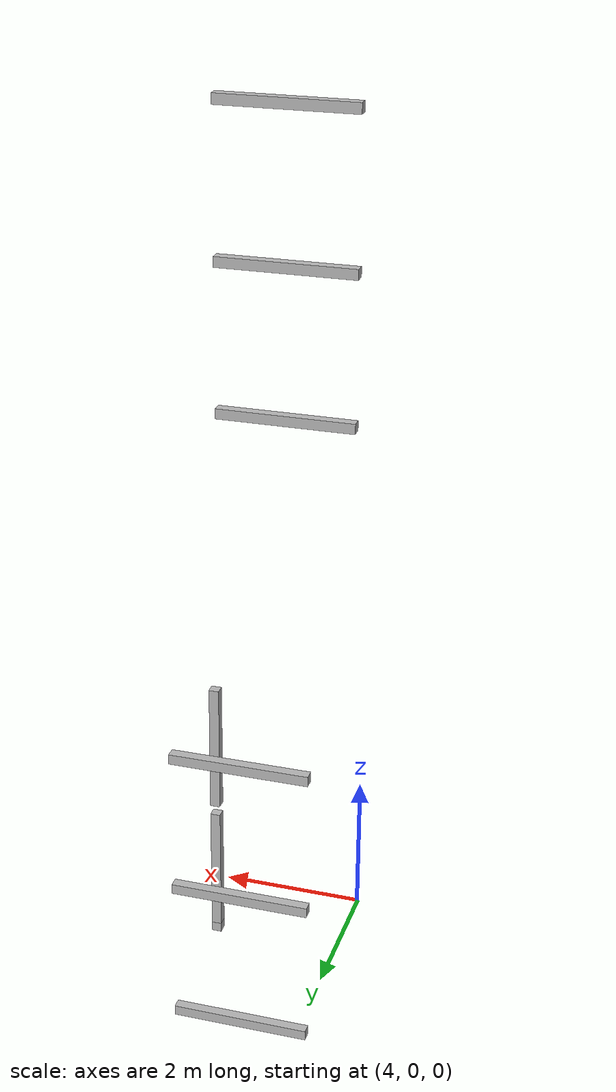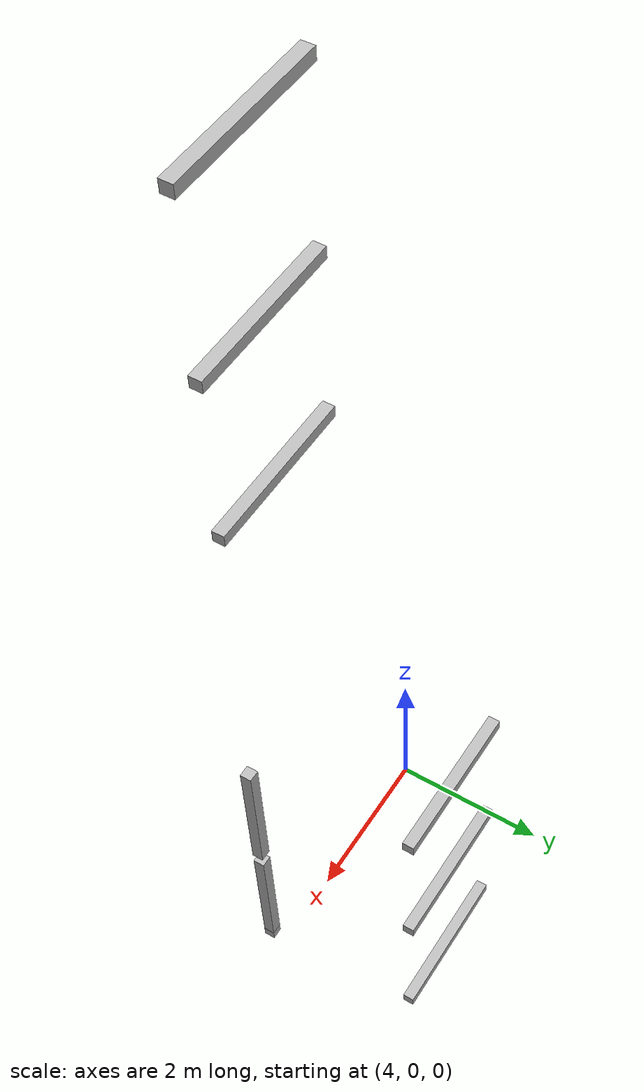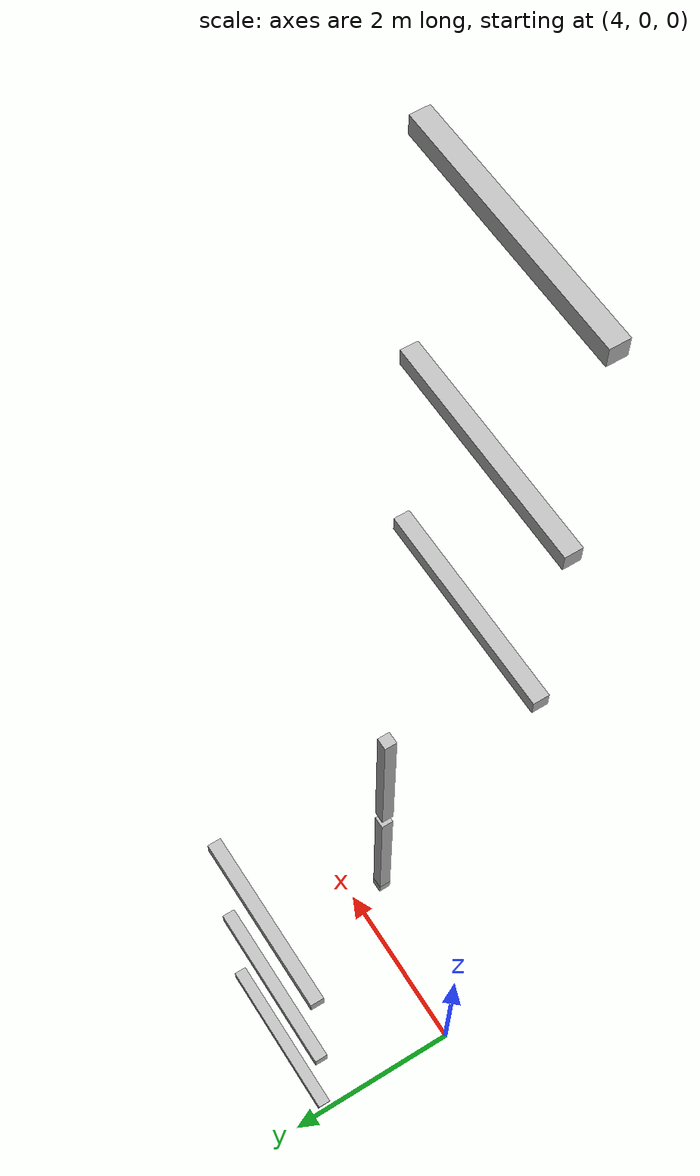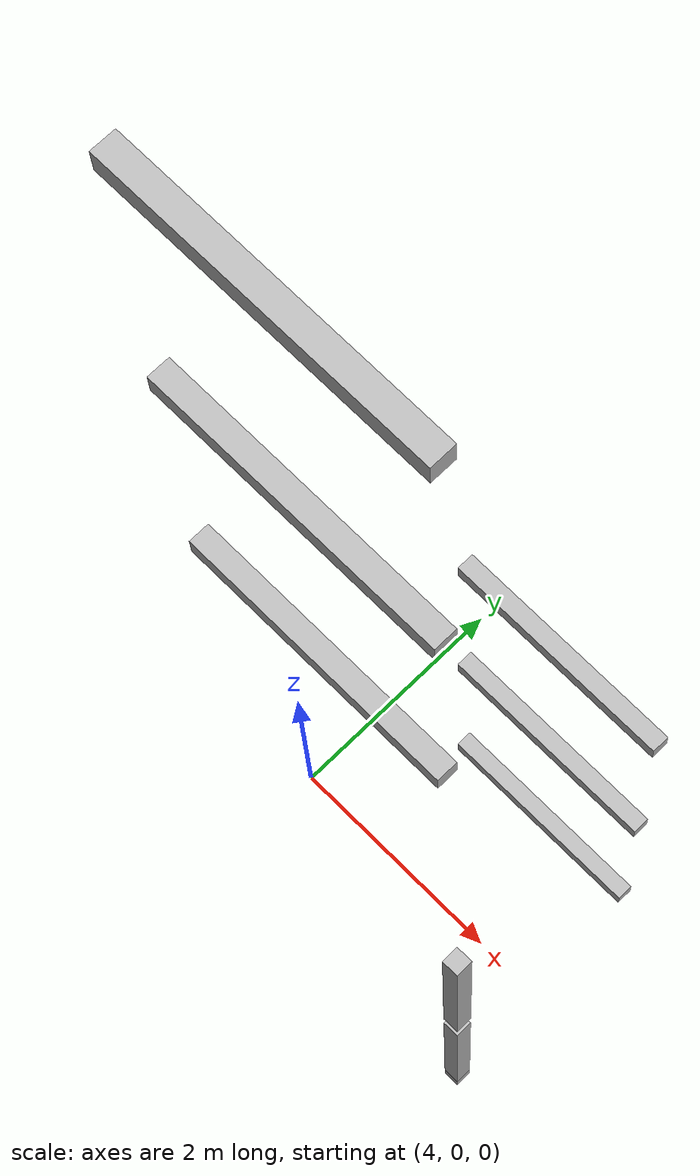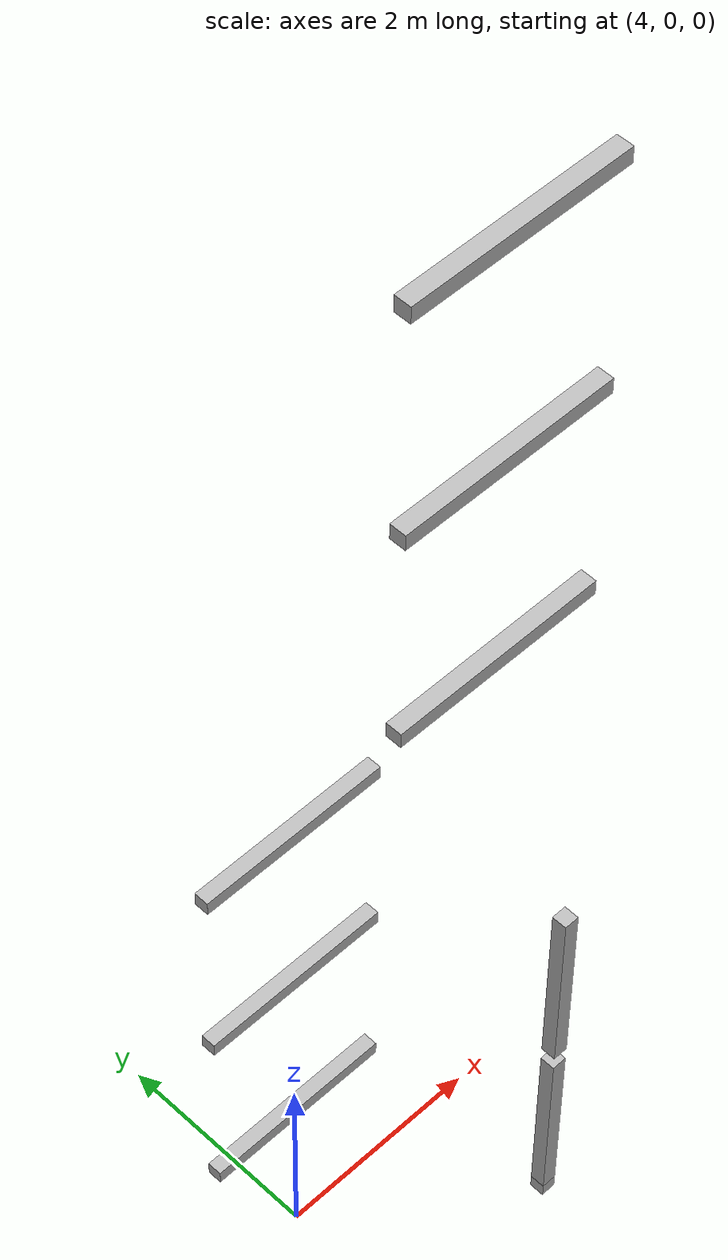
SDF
<sdf version="1.7">
 <world name="default">
  <model name="orthogonal_747_2.000.15_TS">
   <static>1</static>
   <link name="u_link_0_2_6">
    <inertial>
     <mass>1</mass>
     <inertia>
      <ixx>0.166667</ixx>
      <ixy>0</ixy>
      <ixz>0</ixz>
      <iyy>0.166667</iyy>
      <iyz>0</iyz>
      <izz>0.166667</izz>
     </inertia>
    </inertial>
    <pose>12.9 4.3 1.075 0 -0 0</pose>
    <visual name="visual_0">
     <laser_retro>463</laser_retro>
     <geometry><box><size>0.15 1e-06 0.15</size></box></geometry>
     <material>
      <script><name>Gazebo/Grey</name><uri>file://media/materials/scripts/gazebo.material</uri></script>
      <shader type="pixel"><normal_map>__default__</normal_map></shader>
      <ambient>0.678 0.498 0.659 1</ambient>
      <diffuse>0.7 0.7 0.7 1</diffuse>
      <specular>0.01 0.01 0.01 1</specular>
      <emissive>0 0 0 1</emissive>
     </material>
     <pose>0 -0.075 0 0 -0 0</pose>
     <transparency>1</transparency>
    </visual>
    <visual name="visual_1">
     <laser_retro>464</laser_retro>
     <geometry><box><size>0.15 1e-06 0.15</size></box></geometry>
     <material>
      <script><name>Gazebo/Grey</name><uri>file://media/materials/scripts/gazebo.material</uri></script>
      <shader type="pixel"><normal_map>__default__</normal_map></shader>
      <ambient>0.447 0.624 0.812 1</ambient>
      <diffuse>0.7 0.7 0.7 1</diffuse>
      <specular>0.01 0.01 0.01 1</specular>
      <emissive>0 0 0 1</emissive>
     </material>
     <pose>0 0.075 0 0 -0 0</pose>
     <transparency>1</transparency>
    </visual>
    <visual name="visual_2">
     <laser_retro>465</laser_retro>
     <geometry><box><size>0.15 0.15 1e-06</size></box></geometry>
     <material>
      <script><name>Gazebo/Grey</name><uri>file://media/materials/scripts/gazebo.material</uri></script>
      <shader type="pixel"><normal_map>__default__</normal_map></shader>
      <ambient>0.988 0.686 0.243 1</ambient>
      <diffuse>0.7 0.7 0.7 1</diffuse>
      <specular>0.01 0.01 0.01 1</specular>
      <emissive>0 0 0 1</emissive>
     </material>
     <pose>0 0 -0.075 0 -0 0</pose>
     <transparency>1</transparency>
    </visual>
    <visual name="visual_3">
     <laser_retro>466</laser_retro>
     <geometry><box><size>1e-06 0.15 0.15</size></box></geometry>
     <material>
      <script><name>Gazebo/Grey</name><uri>file://media/materials/scripts/gazebo.material</uri></script>
      <shader type="pixel"><normal_map>__default__</normal_map></shader>
      <ambient>0.988 0.914 0.31 1</ambient>
      <diffuse>0.7 0.7 0.7 1</diffuse>
      <specular>0.01 0.01 0.01 1</specular>
      <emissive>0 0 0 1</emissive>
     </material>
     <pose>0.075 0 0 0 -0 0</pose>
     <transparency>1</transparency>
    </visual>
    <visual name="visual_4">
     <laser_retro>467</laser_retro>
     <geometry><box><size>0.15 0.15 1e-06</size></box></geometry>
     <material>
      <script><name>Gazebo/Grey</name><uri>file://media/materials/scripts/gazebo.material</uri></script>
      <shader type="pixel"><normal_map>__default__</normal_map></shader>
      <ambient>0.937 0.161 0.161 1</ambient>
      <diffuse>0.7 0.7 0.7 1</diffuse>
      <specular>0.01 0.01 0.01 1</specular>
      <emissive>0 0 0 1</emissive>
     </material>
     <pose>0 0 0.075 0 -0 0</pose>
     <transparency>1</transparency>
    </visual>
    <visual name="visual_5">
     <laser_retro>468</laser_retro>
     <geometry><box><size>1e-06 0.15 0.15</size></box></geometry>
     <material>
      <script><name>Gazebo/Grey</name><uri>file://media/materials/scripts/gazebo.material</uri></script>
      <shader type="pixel"><normal_map>__default__</normal_map></shader>
      <ambient>0.541 0.886 0.204 1</ambient>
      <diffuse>0.7 0.7 0.7 1</diffuse>
      <specular>0.01 0.01 0.01 1</specular>
      <emissive>0 0 0 1</emissive>
     </material>
     <pose>-0.075 0 0 0 -0 0</pose>
     <transparency>1</transparency>
    </visual>
    <visual name="visual_texture">
     <geometry><box><size>0.149985 0.149985 0.149985</size></box></geometry>
     <material>
      <script>
       <uri>model://BASE_MODELS/simple_block_v2_textured/materials/scripts</uri>
       <uri>model://BASE_MODELS/simple_block_v2_textured/materials/textures</uri>
       <name>metal</name>
      </script>
     </material>
     <laser_retro>469</laser_retro>
    </visual>
    <collision name="collision">
     <geometry><box><size>0.15 0.15 0.15</size></box></geometry>
     <surface>
      <friction>
       <ode><mu>1</mu><mu2>1</mu2><fdir1>0 0 0</fdir1><slip1>0</slip1><slip2>0</slip2></ode>
       <torsional>
        <coefficient>1</coefficient>
        <patch_radius>0</patch_radius>
        <surface_radius>0</surface_radius>
        <use_patch_radius>1</use_patch_radius>
        <ode><slip>0</slip></ode>
       </torsional>
      </friction>
      <bounce><restitution_coefficient>0</restitution_coefficient><threshold>1e+06</threshold></bounce>
      <contact>
       <collide_without_contact>0</collide_without_contact>
       <collide_without_contact_bitmask>1</collide_without_contact_bitmask>
       <collide_bitmask>1</collide_bitmask>
       <ode>
        <soft_cfm>0</soft_cfm>
        <soft_erp>0.2</soft_erp>
        <kp>1e+13</kp>
        <kd>1</kd>
        <max_vel>0.01</max_vel>
        <min_depth>0</min_depth>
       </ode>
       <bullet>
        <split_impulse>1</split_impulse>
        <split_impulse_penetration_threshold>-0.01</split_impulse_penetration_threshold>
        <soft_cfm>0</soft_cfm>
        <soft_erp>0.2</soft_erp>
        <kp>1e+13</kp>
        <kd>1</kd>
       </bullet>
      </contact>
     </surface>
    </collision>
   </link>
   <link name="x_link_0_3_5">
    <inertial>
     <mass>1</mass>
     <inertia>
      <ixx>0.166667</ixx>
      <ixy>0</ixy>
      <ixz>0</ixz>
      <iyy>0.166667</iyy>
      <iyz>0</iyz>
      <izz>0.166667</izz>
     </inertia>
    </inertial>
    <pose>11.825 6.45 1.075 0 -0 0</pose>
    <visual name="visual_0">
     <laser_retro>589</laser_retro>
     <geometry><box><size>2 1e-06 0.15</size></box></geometry>
     <material>
      <script><name>Gazebo/Grey</name><uri>file://media/materials/scripts/gazebo.material</uri></script>
      <shader type="pixel"><normal_map>__default__</normal_map></shader>
      <ambient>0.678 0.498 0.659 1</ambient>
      <diffuse>0.7 0.7 0.7 1</diffuse>
      <specular>0.01 0.01 0.01 1</specular>
      <emissive>0 0 0 1</emissive>
     </material>
     <pose>0 -0.075 0 0 -0 0</pose>
     <transparency>1</transparency>
    </visual>
    <visual name="visual_1">
     <laser_retro>590</laser_retro>
     <geometry><box><size>2 1e-06 0.15</size></box></geometry>
     <material>
      <script><name>Gazebo/Grey</name><uri>file://media/materials/scripts/gazebo.material</uri></script>
      <shader type="pixel"><normal_map>__default__</normal_map></shader>
      <ambient>0.447 0.624 0.812 1</ambient>
      <diffuse>0.7 0.7 0.7 1</diffuse>
      <specular>0.01 0.01 0.01 1</specular>
      <emissive>0 0 0 1</emissive>
     </material>
     <pose>0 0.075 0 0 -0 0</pose>
     <transparency>1</transparency>
    </visual>
    <visual name="visual_2">
     <laser_retro>591</laser_retro>
     <geometry><box><size>2 0.15 1e-06</size></box></geometry>
     <material>
      <script><name>Gazebo/Grey</name><uri>file://media/materials/scripts/gazebo.material</uri></script>
      <shader type="pixel"><normal_map>__default__</normal_map></shader>
      <ambient>0.988 0.686 0.243 1</ambient>
      <diffuse>0.7 0.7 0.7 1</diffuse>
      <specular>0.01 0.01 0.01 1</specular>
      <emissive>0 0 0 1</emissive>
     </material>
     <pose>0 0 -0.075 0 -0 0</pose>
     <transparency>1</transparency>
    </visual>
    <visual name="visual_3">
     <laser_retro>592</laser_retro>
     <geometry><box><size>1e-06 0.15 0.15</size></box></geometry>
     <material>
      <script><name>Gazebo/Grey</name><uri>file://media/materials/scripts/gazebo.material</uri></script>
      <shader type="pixel"><normal_map>__default__</normal_map></shader>
      <ambient>0.988 0.914 0.31 1</ambient>
      <diffuse>0.7 0.7 0.7 1</diffuse>
      <specular>0.01 0.01 0.01 1</specular>
      <emissive>0 0 0 1</emissive>
     </material>
     <pose>1 0 0 0 -0 0</pose>
     <transparency>1</transparency>
    </visual>
    <visual name="visual_4">
     <laser_retro>593</laser_retro>
     <geometry><box><size>2 0.15 1e-06</size></box></geometry>
     <material>
      <script><name>Gazebo/Grey</name><uri>file://media/materials/scripts/gazebo.material</uri></script>
      <shader type="pixel"><normal_map>__default__</normal_map></shader>
      <ambient>0.937 0.161 0.161 1</ambient>
      <diffuse>0.7 0.7 0.7 1</diffuse>
      <specular>0.01 0.01 0.01 1</specular>
      <emissive>0 0 0 1</emissive>
     </material>
     <pose>0 0 0.075 0 -0 0</pose>
     <transparency>1</transparency>
    </visual>
    <visual name="visual_5">
     <laser_retro>594</laser_retro>
     <geometry><box><size>1e-06 0.15 0.15</size></box></geometry>
     <material>
      <script><name>Gazebo/Grey</name><uri>file://media/materials/scripts/gazebo.material</uri></script>
      <shader type="pixel"><normal_map>__default__</normal_map></shader>
      <ambient>0.541 0.886 0.204 1</ambient>
      <diffuse>0.7 0.7 0.7 1</diffuse>
      <specular>0.01 0.01 0.01 1</specular>
      <emissive>0 0 0 1</emissive>
     </material>
     <pose>-1 0 0 0 -0 0</pose>
     <transparency>1</transparency>
    </visual>
    <visual name="visual_texture">
     <geometry><box><size>1.9998 0.149985 0.149985</size></box></geometry>
     <material>
      <script>
       <uri>model://BASE_MODELS/simple_block_v2_textured/materials/scripts</uri>
       <uri>model://BASE_MODELS/simple_block_v2_textured/materials/textures</uri>
       <name>metal</name>
      </script>
     </material>
     <laser_retro>595</laser_retro>
    </visual>
    <collision name="collision">
     <geometry><box><size>2 0.15 0.15</size></box></geometry>
     <surface>
      <friction>
       <ode><mu>1</mu><mu2>1</mu2><fdir1>0 0 0</fdir1><slip1>0</slip1><slip2>0</slip2></ode>
       <torsional>
        <coefficient>1</coefficient>
        <patch_radius>0</patch_radius>
        <surface_radius>0</surface_radius>
        <use_patch_radius>1</use_patch_radius>
        <ode><slip>0</slip></ode>
       </torsional>
      </friction>
      <bounce><restitution_coefficient>0</restitution_coefficient><threshold>1e+06</threshold></bounce>
      <contact>
       <collide_without_contact>0</collide_without_contact>
       <collide_without_contact_bitmask>1</collide_without_contact_bitmask>
       <collide_bitmask>1</collide_bitmask>
       <ode>
        <soft_cfm>0</soft_cfm>
        <soft_erp>0.2</soft_erp>
        <kp>1e+13</kp>
        <kd>1</kd>
        <max_vel>0.01</max_vel>
        <min_depth>0</min_depth>
       </ode>
       <bullet>
        <split_impulse>1</split_impulse>
        <split_impulse_penetration_threshold>-0.01</split_impulse_penetration_threshold>
        <soft_cfm>0</soft_cfm>
        <soft_erp>0.2</soft_erp>
        <kp>1e+13</kp>
        <kd>1</kd>
       </bullet>
      </contact>
     </surface>
    </collision>
   </link>
   <link name="z_link_1_2_6">
    <inertial>
     <mass>1</mass>
     <inertia>
      <ixx>0.166667</ixx>
      <ixy>0</ixy>
      <ixz>0</ixz>
      <iyy>0.166667</iyy>
      <iyz>0</iyz>
      <izz>0.166667</izz>
     </inertia>
    </inertial>
    <pose>12.9 4.3 2.15 0 -0 0</pose>
    <visual name="visual_0">
     <laser_retro>1289</laser_retro>
     <geometry><box><size>0.15 1e-06 2</size></box></geometry>
     <material>
      <script><name>Gazebo/Grey</name><uri>file://media/materials/scripts/gazebo.material</uri></script>
      <shader type="pixel"><normal_map>__default__</normal_map></shader>
      <ambient>0.678 0.498 0.659 1</ambient>
      <diffuse>0.7 0.7 0.7 1</diffuse>
      <specular>0.01 0.01 0.01 1</specular>
      <emissive>0 0 0 1</emissive>
     </material>
     <pose>0 -0.075 0 0 -0 0</pose>
     <transparency>1</transparency>
    </visual>
    <visual name="visual_1">
     <laser_retro>1290</laser_retro>
     <geometry><box><size>0.15 1e-06 2</size></box></geometry>
     <material>
      <script><name>Gazebo/Grey</name><uri>file://media/materials/scripts/gazebo.material</uri></script>
      <shader type="pixel"><normal_map>__default__</normal_map></shader>
      <ambient>0.447 0.624 0.812 1</ambient>
      <diffuse>0.7 0.7 0.7 1</diffuse>
      <specular>0.01 0.01 0.01 1</specular>
      <emissive>0 0 0 1</emissive>
     </material>
     <pose>0 0.075 0 0 -0 0</pose>
     <transparency>1</transparency>
    </visual>
    <visual name="visual_2">
     <laser_retro>1291</laser_retro>
     <geometry><box><size>0.15 0.15 1e-06</size></box></geometry>
     <material>
      <script><name>Gazebo/Grey</name><uri>file://media/materials/scripts/gazebo.material</uri></script>
      <shader type="pixel"><normal_map>__default__</normal_map></shader>
      <ambient>0.988 0.686 0.243 1</ambient>
      <diffuse>0.7 0.7 0.7 1</diffuse>
      <specular>0.01 0.01 0.01 1</specular>
      <emissive>0 0 0 1</emissive>
     </material>
     <pose>0 0 -1 0 -0 0</pose>
     <transparency>1</transparency>
    </visual>
    <visual name="visual_3">
     <laser_retro>1292</laser_retro>
     <geometry><box><size>1e-06 0.15 2</size></box></geometry>
     <material>
      <script><name>Gazebo/Grey</name><uri>file://media/materials/scripts/gazebo.material</uri></script>
      <shader type="pixel"><normal_map>__default__</normal_map></shader>
      <ambient>0.988 0.914 0.31 1</ambient>
      <diffuse>0.7 0.7 0.7 1</diffuse>
      <specular>0.01 0.01 0.01 1</specular>
      <emissive>0 0 0 1</emissive>
     </material>
     <pose>0.075 0 0 0 -0 0</pose>
     <transparency>1</transparency>
    </visual>
    <visual name="visual_4">
     <laser_retro>1293</laser_retro>
     <geometry><box><size>0.15 0.15 1e-06</size></box></geometry>
     <material>
      <script><name>Gazebo/Grey</name><uri>file://media/materials/scripts/gazebo.material</uri></script>
      <shader type="pixel"><normal_map>__default__</normal_map></shader>
      <ambient>0.937 0.161 0.161 1</ambient>
      <diffuse>0.7 0.7 0.7 1</diffuse>
      <specular>0.01 0.01 0.01 1</specular>
      <emissive>0 0 0 1</emissive>
     </material>
     <pose>0 0 1 0 -0 0</pose>
     <transparency>1</transparency>
    </visual>
    <visual name="visual_5">
     <laser_retro>1294</laser_retro>
     <geometry><box><size>1e-06 0.15 2</size></box></geometry>
     <material>
      <script><name>Gazebo/Grey</name><uri>file://media/materials/scripts/gazebo.material</uri></script>
      <shader type="pixel"><normal_map>__default__</normal_map></shader>
      <ambient>0.541 0.886 0.204 1</ambient>
      <diffuse>0.7 0.7 0.7 1</diffuse>
      <specular>0.01 0.01 0.01 1</specular>
      <emissive>0 0 0 1</emissive>
     </material>
     <pose>-0.075 0 0 0 -0 0</pose>
     <transparency>1</transparency>
    </visual>
    <visual name="visual_texture">
     <geometry><box><size>0.149985 0.149985 1.9998</size></box></geometry>
     <material>
      <script>
       <uri>model://BASE_MODELS/simple_block_v2_textured/materials/scripts</uri>
       <uri>model://BASE_MODELS/simple_block_v2_textured/materials/textures</uri>
       <name>metal</name>
      </script>
     </material>
     <laser_retro>1295</laser_retro>
    </visual>
    <collision name="collision">
     <geometry><box><size>0.15 0.15 2</size></box></geometry>
     <surface>
      <friction>
       <ode><mu>1</mu><mu2>1</mu2><fdir1>0 0 0</fdir1><slip1>0</slip1><slip2>0</slip2></ode>
       <torsional>
        <coefficient>1</coefficient>
        <patch_radius>0</patch_radius>
        <surface_radius>0</surface_radius>
        <use_patch_radius>1</use_patch_radius>
        <ode><slip>0</slip></ode>
       </torsional>
      </friction>
      <bounce><restitution_coefficient>0</restitution_coefficient><threshold>1e+06</threshold></bounce>
      <contact>
       <collide_without_contact>0</collide_without_contact>
       <collide_without_contact_bitmask>1</collide_without_contact_bitmask>
       <collide_bitmask>1</collide_bitmask>
       <ode>
        <soft_cfm>0</soft_cfm>
        <soft_erp>0.2</soft_erp>
        <kp>1e+13</kp>
        <kd>1</kd>
        <max_vel>0.01</max_vel>
        <min_depth>0</min_depth>
       </ode>
       <bullet>
        <split_impulse>1</split_impulse>
        <split_impulse_penetration_threshold>-0.01</split_impulse_penetration_threshold>
        <soft_cfm>0</soft_cfm>
        <soft_erp>0.2</soft_erp>
        <kp>1e+13</kp>
        <kd>1</kd>
       </bullet>
      </contact>
     </surface>
    </collision>
   </link>
   <link name="x_link_1_3_5">
    <inertial>
     <mass>1</mass>
     <inertia>
      <ixx>0.166667</ixx>
      <ixy>0</ixy>
      <ixz>0</ixz>
      <iyy>0.166667</iyy>
      <iyz>0</iyz>
      <izz>0.166667</izz>
     </inertia>
    </inertial>
    <pose>11.825 6.45 3.225 0 -0 0</pose>
    <visual name="visual_0">
     <laser_retro>1429</laser_retro>
     <geometry><box><size>2 1e-06 0.15</size></box></geometry>
     <material>
      <script><name>Gazebo/Grey</name><uri>file://media/materials/scripts/gazebo.material</uri></script>
      <shader type="pixel"><normal_map>__default__</normal_map></shader>
      <ambient>0.678 0.498 0.659 1</ambient>
      <diffuse>0.7 0.7 0.7 1</diffuse>
      <specular>0.01 0.01 0.01 1</specular>
      <emissive>0 0 0 1</emissive>
     </material>
     <pose>0 -0.075 0 0 -0 0</pose>
     <transparency>1</transparency>
    </visual>
    <visual name="visual_1">
     <laser_retro>1430</laser_retro>
     <geometry><box><size>2 1e-06 0.15</size></box></geometry>
     <material>
      <script><name>Gazebo/Grey</name><uri>file://media/materials/scripts/gazebo.material</uri></script>
      <shader type="pixel"><normal_map>__default__</normal_map></shader>
      <ambient>0.447 0.624 0.812 1</ambient>
      <diffuse>0.7 0.7 0.7 1</diffuse>
      <specular>0.01 0.01 0.01 1</specular>
      <emissive>0 0 0 1</emissive>
     </material>
     <pose>0 0.075 0 0 -0 0</pose>
     <transparency>1</transparency>
    </visual>
    <visual name="visual_2">
     <laser_retro>1431</laser_retro>
     <geometry><box><size>2 0.15 1e-06</size></box></geometry>
     <material>
      <script><name>Gazebo/Grey</name><uri>file://media/materials/scripts/gazebo.material</uri></script>
      <shader type="pixel"><normal_map>__default__</normal_map></shader>
      <ambient>0.988 0.686 0.243 1</ambient>
      <diffuse>0.7 0.7 0.7 1</diffuse>
      <specular>0.01 0.01 0.01 1</specular>
      <emissive>0 0 0 1</emissive>
     </material>
     <pose>0 0 -0.075 0 -0 0</pose>
     <transparency>1</transparency>
    </visual>
    <visual name="visual_3">
     <laser_retro>1432</laser_retro>
     <geometry><box><size>1e-06 0.15 0.15</size></box></geometry>
     <material>
      <script><name>Gazebo/Grey</name><uri>file://media/materials/scripts/gazebo.material</uri></script>
      <shader type="pixel"><normal_map>__default__</normal_map></shader>
      <ambient>0.988 0.914 0.31 1</ambient>
      <diffuse>0.7 0.7 0.7 1</diffuse>
      <specular>0.01 0.01 0.01 1</specular>
      <emissive>0 0 0 1</emissive>
     </material>
     <pose>1 0 0 0 -0 0</pose>
     <transparency>1</transparency>
    </visual>
    <visual name="visual_4">
     <laser_retro>1433</laser_retro>
     <geometry><box><size>2 0.15 1e-06</size></box></geometry>
     <material>
      <script><name>Gazebo/Grey</name><uri>file://media/materials/scripts/gazebo.material</uri></script>
      <shader type="pixel"><normal_map>__default__</normal_map></shader>
      <ambient>0.937 0.161 0.161 1</ambient>
      <diffuse>0.7 0.7 0.7 1</diffuse>
      <specular>0.01 0.01 0.01 1</specular>
      <emissive>0 0 0 1</emissive>
     </material>
     <pose>0 0 0.075 0 -0 0</pose>
     <transparency>1</transparency>
    </visual>
    <visual name="visual_5">
     <laser_retro>1434</laser_retro>
     <geometry><box><size>1e-06 0.15 0.15</size></box></geometry>
     <material>
      <script><name>Gazebo/Grey</name><uri>file://media/materials/scripts/gazebo.material</uri></script>
      <shader type="pixel"><normal_map>__default__</normal_map></shader>
      <ambient>0.541 0.886 0.204 1</ambient>
      <diffuse>0.7 0.7 0.7 1</diffuse>
      <specular>0.01 0.01 0.01 1</specular>
      <emissive>0 0 0 1</emissive>
     </material>
     <pose>-1 0 0 0 -0 0</pose>
     <transparency>1</transparency>
    </visual>
    <visual name="visual_texture">
     <geometry><box><size>1.9998 0.149985 0.149985</size></box></geometry>
     <material>
      <script>
       <uri>model://BASE_MODELS/simple_block_v2_textured/materials/scripts</uri>
       <uri>model://BASE_MODELS/simple_block_v2_textured/materials/textures</uri>
       <name>metal</name>
      </script>
     </material>
     <laser_retro>1435</laser_retro>
    </visual>
    <collision name="collision">
     <geometry><box><size>2 0.15 0.15</size></box></geometry>
     <surface>
      <friction>
       <ode><mu>1</mu><mu2>1</mu2><fdir1>0 0 0</fdir1><slip1>0</slip1><slip2>0</slip2></ode>
       <torsional>
        <coefficient>1</coefficient>
        <patch_radius>0</patch_radius>
        <surface_radius>0</surface_radius>
        <use_patch_radius>1</use_patch_radius>
        <ode><slip>0</slip></ode>
       </torsional>
      </friction>
      <bounce><restitution_coefficient>0</restitution_coefficient><threshold>1e+06</threshold></bounce>
      <contact>
       <collide_without_contact>0</collide_without_contact>
       <collide_without_contact_bitmask>1</collide_without_contact_bitmask>
       <collide_bitmask>1</collide_bitmask>
       <ode>
        <soft_cfm>0</soft_cfm>
        <soft_erp>0.2</soft_erp>
        <kp>1e+13</kp>
        <kd>1</kd>
        <max_vel>0.01</max_vel>
        <min_depth>0</min_depth>
       </ode>
       <bullet>
        <split_impulse>1</split_impulse>
        <split_impulse_penetration_threshold>-0.01</split_impulse_penetration_threshold>
        <soft_cfm>0</soft_cfm>
        <soft_erp>0.2</soft_erp>
        <kp>1e+13</kp>
        <kd>1</kd>
       </bullet>
      </contact>
     </surface>
    </collision>
   </link>
   <link name="z_link_2_2_6">
    <inertial>
     <mass>1</mass>
     <inertia>
      <ixx>0.166667</ixx>
      <ixy>0</ixy>
      <ixz>0</ixz>
      <iyy>0.166667</iyy>
      <iyz>0</iyz>
      <izz>0.166667</izz>
     </inertia>
    </inertial>
    <pose>12.9 4.3 4.3 0 -0 0</pose>
    <visual name="visual_0">
     <laser_retro>2192</laser_retro>
     <geometry><box><size>0.15 1e-06 2</size></box></geometry>
     <material>
      <script><name>Gazebo/Grey</name><uri>file://media/materials/scripts/gazebo.material</uri></script>
      <shader type="pixel"><normal_map>__default__</normal_map></shader>
      <ambient>0.678 0.498 0.659 1</ambient>
      <diffuse>0.7 0.7 0.7 1</diffuse>
      <specular>0.01 0.01 0.01 1</specular>
      <emissive>0 0 0 1</emissive>
     </material>
     <pose>0 -0.075 0 0 -0 0</pose>
     <transparency>1</transparency>
    </visual>
    <visual name="visual_1">
     <laser_retro>2193</laser_retro>
     <geometry><box><size>0.15 1e-06 2</size></box></geometry>
     <material>
      <script><name>Gazebo/Grey</name><uri>file://media/materials/scripts/gazebo.material</uri></script>
      <shader type="pixel"><normal_map>__default__</normal_map></shader>
      <ambient>0.447 0.624 0.812 1</ambient>
      <diffuse>0.7 0.7 0.7 1</diffuse>
      <specular>0.01 0.01 0.01 1</specular>
      <emissive>0 0 0 1</emissive>
     </material>
     <pose>0 0.075 0 0 -0 0</pose>
     <transparency>1</transparency>
    </visual>
    <visual name="visual_2">
     <laser_retro>2194</laser_retro>
     <geometry><box><size>0.15 0.15 1e-06</size></box></geometry>
     <material>
      <script><name>Gazebo/Grey</name><uri>file://media/materials/scripts/gazebo.material</uri></script>
      <shader type="pixel"><normal_map>__default__</normal_map></shader>
      <ambient>0.988 0.686 0.243 1</ambient>
      <diffuse>0.7 0.7 0.7 1</diffuse>
      <specular>0.01 0.01 0.01 1</specular>
      <emissive>0 0 0 1</emissive>
     </material>
     <pose>0 0 -1 0 -0 0</pose>
     <transparency>1</transparency>
    </visual>
    <visual name="visual_3">
     <laser_retro>2195</laser_retro>
     <geometry><box><size>1e-06 0.15 2</size></box></geometry>
     <material>
      <script><name>Gazebo/Grey</name><uri>file://media/materials/scripts/gazebo.material</uri></script>
      <shader type="pixel"><normal_map>__default__</normal_map></shader>
      <ambient>0.988 0.914 0.31 1</ambient>
      <diffuse>0.7 0.7 0.7 1</diffuse>
      <specular>0.01 0.01 0.01 1</specular>
      <emissive>0 0 0 1</emissive>
     </material>
     <pose>0.075 0 0 0 -0 0</pose>
     <transparency>1</transparency>
    </visual>
    <visual name="visual_4">
     <laser_retro>2196</laser_retro>
     <geometry><box><size>0.15 0.15 1e-06</size></box></geometry>
     <material>
      <script><name>Gazebo/Grey</name><uri>file://media/materials/scripts/gazebo.material</uri></script>
      <shader type="pixel"><normal_map>__default__</normal_map></shader>
      <ambient>0.937 0.161 0.161 1</ambient>
      <diffuse>0.7 0.7 0.7 1</diffuse>
      <specular>0.01 0.01 0.01 1</specular>
      <emissive>0 0 0 1</emissive>
     </material>
     <pose>0 0 1 0 -0 0</pose>
     <transparency>1</transparency>
    </visual>
    <visual name="visual_5">
     <laser_retro>2197</laser_retro>
     <geometry><box><size>1e-06 0.15 2</size></box></geometry>
     <material>
      <script><name>Gazebo/Grey</name><uri>file://media/materials/scripts/gazebo.material</uri></script>
      <shader type="pixel"><normal_map>__default__</normal_map></shader>
      <ambient>0.541 0.886 0.204 1</ambient>
      <diffuse>0.7 0.7 0.7 1</diffuse>
      <specular>0.01 0.01 0.01 1</specular>
      <emissive>0 0 0 1</emissive>
     </material>
     <pose>-0.075 0 0 0 -0 0</pose>
     <transparency>1</transparency>
    </visual>
    <visual name="visual_texture">
     <geometry><box><size>0.149985 0.149985 1.9998</size></box></geometry>
     <material>
      <script>
       <uri>model://BASE_MODELS/simple_block_v2_textured/materials/scripts</uri>
       <uri>model://BASE_MODELS/simple_block_v2_textured/materials/textures</uri>
       <name>metal</name>
      </script>
     </material>
     <laser_retro>2198</laser_retro>
    </visual>
    <collision name="collision">
     <geometry><box><size>0.15 0.15 2</size></box></geometry>
     <surface>
      <friction>
       <ode><mu>1</mu><mu2>1</mu2><fdir1>0 0 0</fdir1><slip1>0</slip1><slip2>0</slip2></ode>
       <torsional>
        <coefficient>1</coefficient>
        <patch_radius>0</patch_radius>
        <surface_radius>0</surface_radius>
        <use_patch_radius>1</use_patch_radius>
        <ode><slip>0</slip></ode>
       </torsional>
      </friction>
      <bounce><restitution_coefficient>0</restitution_coefficient><threshold>1e+06</threshold></bounce>
      <contact>
       <collide_without_contact>0</collide_without_contact>
       <collide_without_contact_bitmask>1</collide_without_contact_bitmask>
       <collide_bitmask>1</collide_bitmask>
       <ode>
        <soft_cfm>0</soft_cfm>
        <soft_erp>0.2</soft_erp>
        <kp>1e+13</kp>
        <kd>1</kd>
        <max_vel>0.01</max_vel>
        <min_depth>0</min_depth>
       </ode>
       <bullet>
        <split_impulse>1</split_impulse>
        <split_impulse_penetration_threshold>-0.01</split_impulse_penetration_threshold>
        <soft_cfm>0</soft_cfm>
        <soft_erp>0.2</soft_erp>
        <kp>1e+13</kp>
        <kd>1</kd>
       </bullet>
      </contact>
     </surface>
    </collision>
   </link>
   <link name="x_link_2_3_5">
    <inertial>
     <mass>1</mass>
     <inertia>
      <ixx>0.166667</ixx>
      <ixy>0</ixy>
      <ixz>0</ixz>
      <iyy>0.166667</iyy>
      <iyz>0</iyz>
      <izz>0.166667</izz>
     </inertia>
    </inertial>
    <pose>11.825 6.45 5.375 0 -0 0</pose>
    <visual name="visual_0">
     <laser_retro>2332</laser_retro>
     <geometry><box><size>2 1e-06 0.15</size></box></geometry>
     <material>
      <script><name>Gazebo/Grey</name><uri>file://media/materials/scripts/gazebo.material</uri></script>
      <shader type="pixel"><normal_map>__default__</normal_map></shader>
      <ambient>0.678 0.498 0.659 1</ambient>
      <diffuse>0.7 0.7 0.7 1</diffuse>
      <specular>0.01 0.01 0.01 1</specular>
      <emissive>0 0 0 1</emissive>
     </material>
     <pose>0 -0.075 0 0 -0 0</pose>
     <transparency>1</transparency>
    </visual>
    <visual name="visual_1">
     <laser_retro>2333</laser_retro>
     <geometry><box><size>2 1e-06 0.15</size></box></geometry>
     <material>
      <script><name>Gazebo/Grey</name><uri>file://media/materials/scripts/gazebo.material</uri></script>
      <shader type="pixel"><normal_map>__default__</normal_map></shader>
      <ambient>0.447 0.624 0.812 1</ambient>
      <diffuse>0.7 0.7 0.7 1</diffuse>
      <specular>0.01 0.01 0.01 1</specular>
      <emissive>0 0 0 1</emissive>
     </material>
     <pose>0 0.075 0 0 -0 0</pose>
     <transparency>1</transparency>
    </visual>
    <visual name="visual_2">
     <laser_retro>2334</laser_retro>
     <geometry><box><size>2 0.15 1e-06</size></box></geometry>
     <material>
      <script><name>Gazebo/Grey</name><uri>file://media/materials/scripts/gazebo.material</uri></script>
      <shader type="pixel"><normal_map>__default__</normal_map></shader>
      <ambient>0.988 0.686 0.243 1</ambient>
      <diffuse>0.7 0.7 0.7 1</diffuse>
      <specular>0.01 0.01 0.01 1</specular>
      <emissive>0 0 0 1</emissive>
     </material>
     <pose>0 0 -0.075 0 -0 0</pose>
     <transparency>1</transparency>
    </visual>
    <visual name="visual_3">
     <laser_retro>2335</laser_retro>
     <geometry><box><size>1e-06 0.15 0.15</size></box></geometry>
     <material>
      <script><name>Gazebo/Grey</name><uri>file://media/materials/scripts/gazebo.material</uri></script>
      <shader type="pixel"><normal_map>__default__</normal_map></shader>
      <ambient>0.988 0.914 0.31 1</ambient>
      <diffuse>0.7 0.7 0.7 1</diffuse>
      <specular>0.01 0.01 0.01 1</specular>
      <emissive>0 0 0 1</emissive>
     </material>
     <pose>1 0 0 0 -0 0</pose>
     <transparency>1</transparency>
    </visual>
    <visual name="visual_4">
     <laser_retro>2336</laser_retro>
     <geometry><box><size>2 0.15 1e-06</size></box></geometry>
     <material>
      <script><name>Gazebo/Grey</name><uri>file://media/materials/scripts/gazebo.material</uri></script>
      <shader type="pixel"><normal_map>__default__</normal_map></shader>
      <ambient>0.937 0.161 0.161 1</ambient>
      <diffuse>0.7 0.7 0.7 1</diffuse>
      <specular>0.01 0.01 0.01 1</specular>
      <emissive>0 0 0 1</emissive>
     </material>
     <pose>0 0 0.075 0 -0 0</pose>
     <transparency>1</transparency>
    </visual>
    <visual name="visual_5">
     <laser_retro>2337</laser_retro>
     <geometry><box><size>1e-06 0.15 0.15</size></box></geometry>
     <material>
      <script><name>Gazebo/Grey</name><uri>file://media/materials/scripts/gazebo.material</uri></script>
      <shader type="pixel"><normal_map>__default__</normal_map></shader>
      <ambient>0.541 0.886 0.204 1</ambient>
      <diffuse>0.7 0.7 0.7 1</diffuse>
      <specular>0.01 0.01 0.01 1</specular>
      <emissive>0 0 0 1</emissive>
     </material>
     <pose>-1 0 0 0 -0 0</pose>
     <transparency>1</transparency>
    </visual>
    <visual name="visual_texture">
     <geometry><box><size>1.9998 0.149985 0.149985</size></box></geometry>
     <material>
      <script>
       <uri>model://BASE_MODELS/simple_block_v2_textured/materials/scripts</uri>
       <uri>model://BASE_MODELS/simple_block_v2_textured/materials/textures</uri>
       <name>metal</name>
      </script>
     </material>
     <laser_retro>2338</laser_retro>
    </visual>
    <collision name="collision">
     <geometry><box><size>2 0.15 0.15</size></box></geometry>
     <surface>
      <friction>
       <ode><mu>1</mu><mu2>1</mu2><fdir1>0 0 0</fdir1><slip1>0</slip1><slip2>0</slip2></ode>
       <torsional>
        <coefficient>1</coefficient>
        <patch_radius>0</patch_radius>
        <surface_radius>0</surface_radius>
        <use_patch_radius>1</use_patch_radius>
        <ode><slip>0</slip></ode>
       </torsional>
      </friction>
      <bounce><restitution_coefficient>0</restitution_coefficient><threshold>1e+06</threshold></bounce>
      <contact>
       <collide_without_contact>0</collide_without_contact>
       <collide_without_contact_bitmask>1</collide_without_contact_bitmask>
       <collide_bitmask>1</collide_bitmask>
       <ode>
        <soft_cfm>0</soft_cfm>
        <soft_erp>0.2</soft_erp>
        <kp>1e+13</kp>
        <kd>1</kd>
        <max_vel>0.01</max_vel>
        <min_depth>0</min_depth>
       </ode>
       <bullet>
        <split_impulse>1</split_impulse>
        <split_impulse_penetration_threshold>-0.01</split_impulse_penetration_threshold>
        <soft_cfm>0</soft_cfm>
        <soft_erp>0.2</soft_erp>
        <kp>1e+13</kp>
        <kd>1</kd>
       </bullet>
      </contact>
     </surface>
    </collision>
   </link>
   <link name="x_link_4_2_5">
    <inertial>
     <mass>1</mass>
     <inertia>
      <ixx>0.166667</ixx>
      <ixy>0</ixy>
      <ixz>0</ixz>
      <iyy>0.166667</iyy>
      <iyz>0</iyz>
      <izz>0.166667</izz>
     </inertia>
    </inertial>
    <pose>11.825 4.3 9.675 0 -0 0</pose>
    <visual name="visual_0">
     <laser_retro>3963</laser_retro>
     <geometry><box><size>2 1e-06 0.15</size></box></geometry>
     <material>
      <script><name>Gazebo/Grey</name><uri>file://media/materials/scripts/gazebo.material</uri></script>
      <shader type="pixel"><normal_map>__default__</normal_map></shader>
      <ambient>0.678 0.498 0.659 1</ambient>
      <diffuse>0.7 0.7 0.7 1</diffuse>
      <specular>0.01 0.01 0.01 1</specular>
      <emissive>0 0 0 1</emissive>
     </material>
     <pose>0 -0.075 0 0 -0 0</pose>
     <transparency>1</transparency>
    </visual>
    <visual name="visual_1">
     <laser_retro>3964</laser_retro>
     <geometry><box><size>2 1e-06 0.15</size></box></geometry>
     <material>
      <script><name>Gazebo/Grey</name><uri>file://media/materials/scripts/gazebo.material</uri></script>
      <shader type="pixel"><normal_map>__default__</normal_map></shader>
      <ambient>0.447 0.624 0.812 1</ambient>
      <diffuse>0.7 0.7 0.7 1</diffuse>
      <specular>0.01 0.01 0.01 1</specular>
      <emissive>0 0 0 1</emissive>
     </material>
     <pose>0 0.075 0 0 -0 0</pose>
     <transparency>1</transparency>
    </visual>
    <visual name="visual_2">
     <laser_retro>3965</laser_retro>
     <geometry><box><size>2 0.15 1e-06</size></box></geometry>
     <material>
      <script><name>Gazebo/Grey</name><uri>file://media/materials/scripts/gazebo.material</uri></script>
      <shader type="pixel"><normal_map>__default__</normal_map></shader>
      <ambient>0.988 0.686 0.243 1</ambient>
      <diffuse>0.7 0.7 0.7 1</diffuse>
      <specular>0.01 0.01 0.01 1</specular>
      <emissive>0 0 0 1</emissive>
     </material>
     <pose>0 0 -0.075 0 -0 0</pose>
     <transparency>1</transparency>
    </visual>
    <visual name="visual_3">
     <laser_retro>3966</laser_retro>
     <geometry><box><size>1e-06 0.15 0.15</size></box></geometry>
     <material>
      <script><name>Gazebo/Grey</name><uri>file://media/materials/scripts/gazebo.material</uri></script>
      <shader type="pixel"><normal_map>__default__</normal_map></shader>
      <ambient>0.988 0.914 0.31 1</ambient>
      <diffuse>0.7 0.7 0.7 1</diffuse>
      <specular>0.01 0.01 0.01 1</specular>
      <emissive>0 0 0 1</emissive>
     </material>
     <pose>1 0 0 0 -0 0</pose>
     <transparency>1</transparency>
    </visual>
    <visual name="visual_4">
     <laser_retro>3967</laser_retro>
     <geometry><box><size>2 0.15 1e-06</size></box></geometry>
     <material>
      <script><name>Gazebo/Grey</name><uri>file://media/materials/scripts/gazebo.material</uri></script>
      <shader type="pixel"><normal_map>__default__</normal_map></shader>
      <ambient>0.937 0.161 0.161 1</ambient>
      <diffuse>0.7 0.7 0.7 1</diffuse>
      <specular>0.01 0.01 0.01 1</specular>
      <emissive>0 0 0 1</emissive>
     </material>
     <pose>0 0 0.075 0 -0 0</pose>
     <transparency>1</transparency>
    </visual>
    <visual name="visual_5">
     <laser_retro>3968</laser_retro>
     <geometry><box><size>1e-06 0.15 0.15</size></box></geometry>
     <material>
      <script><name>Gazebo/Grey</name><uri>file://media/materials/scripts/gazebo.material</uri></script>
      <shader type="pixel"><normal_map>__default__</normal_map></shader>
      <ambient>0.541 0.886 0.204 1</ambient>
      <diffuse>0.7 0.7 0.7 1</diffuse>
      <specular>0.01 0.01 0.01 1</specular>
      <emissive>0 0 0 1</emissive>
     </material>
     <pose>-1 0 0 0 -0 0</pose>
     <transparency>1</transparency>
    </visual>
    <visual name="visual_texture">
     <geometry><box><size>1.9998 0.149985 0.149985</size></box></geometry>
     <material>
      <script>
       <uri>model://BASE_MODELS/simple_block_v2_textured/materials/scripts</uri>
       <uri>model://BASE_MODELS/simple_block_v2_textured/materials/textures</uri>
       <name>metal</name>
      </script>
     </material>
     <laser_retro>3969</laser_retro>
    </visual>
    <collision name="collision">
     <geometry><box><size>2 0.15 0.15</size></box></geometry>
     <surface>
      <friction>
       <ode><mu>1</mu><mu2>1</mu2><fdir1>0 0 0</fdir1><slip1>0</slip1><slip2>0</slip2></ode>
       <torsional>
        <coefficient>1</coefficient>
        <patch_radius>0</patch_radius>
        <surface_radius>0</surface_radius>
        <use_patch_radius>1</use_patch_radius>
        <ode><slip>0</slip></ode>
       </torsional>
      </friction>
      <bounce><restitution_coefficient>0</restitution_coefficient><threshold>1e+06</threshold></bounce>
      <contact>
       <collide_without_contact>0</collide_without_contact>
       <collide_without_contact_bitmask>1</collide_without_contact_bitmask>
       <collide_bitmask>1</collide_bitmask>
       <ode>
        <soft_cfm>0</soft_cfm>
        <soft_erp>0.2</soft_erp>
        <kp>1e+13</kp>
        <kd>1</kd>
        <max_vel>0.01</max_vel>
        <min_depth>0</min_depth>
       </ode>
       <bullet>
        <split_impulse>1</split_impulse>
        <split_impulse_penetration_threshold>-0.01</split_impulse_penetration_threshold>
        <soft_cfm>0</soft_cfm>
        <soft_erp>0.2</soft_erp>
        <kp>1e+13</kp>
        <kd>1</kd>
       </bullet>
      </contact>
     </surface>
    </collision>
   </link>
   <link name="x_link_5_2_5">
    <inertial>
     <mass>1</mass>
     <inertia>
      <ixx>0.166667</ixx>
      <ixy>0</ixy>
      <ixz>0</ixz>
      <iyy>0.166667</iyy>
      <iyz>0</iyz>
      <izz>0.166667</izz>
     </inertia>
    </inertial>
    <pose>11.825 4.3 11.825 0 -0 0</pose>
    <visual name="visual_0">
     <laser_retro>4866</laser_retro>
     <geometry><box><size>2 1e-06 0.15</size></box></geometry>
     <material>
      <script><name>Gazebo/Grey</name><uri>file://media/materials/scripts/gazebo.material</uri></script>
      <shader type="pixel"><normal_map>__default__</normal_map></shader>
      <ambient>0.678 0.498 0.659 1</ambient>
      <diffuse>0.7 0.7 0.7 1</diffuse>
      <specular>0.01 0.01 0.01 1</specular>
      <emissive>0 0 0 1</emissive>
     </material>
     <pose>0 -0.075 0 0 -0 0</pose>
     <transparency>1</transparency>
    </visual>
    <visual name="visual_1">
     <laser_retro>4867</laser_retro>
     <geometry><box><size>2 1e-06 0.15</size></box></geometry>
     <material>
      <script><name>Gazebo/Grey</name><uri>file://media/materials/scripts/gazebo.material</uri></script>
      <shader type="pixel"><normal_map>__default__</normal_map></shader>
      <ambient>0.447 0.624 0.812 1</ambient>
      <diffuse>0.7 0.7 0.7 1</diffuse>
      <specular>0.01 0.01 0.01 1</specular>
      <emissive>0 0 0 1</emissive>
     </material>
     <pose>0 0.075 0 0 -0 0</pose>
     <transparency>1</transparency>
    </visual>
    <visual name="visual_2">
     <laser_retro>4868</laser_retro>
     <geometry><box><size>2 0.15 1e-06</size></box></geometry>
     <material>
      <script><name>Gazebo/Grey</name><uri>file://media/materials/scripts/gazebo.material</uri></script>
      <shader type="pixel"><normal_map>__default__</normal_map></shader>
      <ambient>0.988 0.686 0.243 1</ambient>
      <diffuse>0.7 0.7 0.7 1</diffuse>
      <specular>0.01 0.01 0.01 1</specular>
      <emissive>0 0 0 1</emissive>
     </material>
     <pose>0 0 -0.075 0 -0 0</pose>
     <transparency>1</transparency>
    </visual>
    <visual name="visual_3">
     <laser_retro>4869</laser_retro>
     <geometry><box><size>1e-06 0.15 0.15</size></box></geometry>
     <material>
      <script><name>Gazebo/Grey</name><uri>file://media/materials/scripts/gazebo.material</uri></script>
      <shader type="pixel"><normal_map>__default__</normal_map></shader>
      <ambient>0.988 0.914 0.31 1</ambient>
      <diffuse>0.7 0.7 0.7 1</diffuse>
      <specular>0.01 0.01 0.01 1</specular>
      <emissive>0 0 0 1</emissive>
     </material>
     <pose>1 0 0 0 -0 0</pose>
     <transparency>1</transparency>
    </visual>
    <visual name="visual_4">
     <laser_retro>4870</laser_retro>
     <geometry><box><size>2 0.15 1e-06</size></box></geometry>
     <material>
      <script><name>Gazebo/Grey</name><uri>file://media/materials/scripts/gazebo.material</uri></script>
      <shader type="pixel"><normal_map>__default__</normal_map></shader>
      <ambient>0.937 0.161 0.161 1</ambient>
      <diffuse>0.7 0.7 0.7 1</diffuse>
      <specular>0.01 0.01 0.01 1</specular>
      <emissive>0 0 0 1</emissive>
     </material>
     <pose>0 0 0.075 0 -0 0</pose>
     <transparency>1</transparency>
    </visual>
    <visual name="visual_5">
     <laser_retro>4871</laser_retro>
     <geometry><box><size>1e-06 0.15 0.15</size></box></geometry>
     <material>
      <script><name>Gazebo/Grey</name><uri>file://media/materials/scripts/gazebo.material</uri></script>
      <shader type="pixel"><normal_map>__default__</normal_map></shader>
      <ambient>0.541 0.886 0.204 1</ambient>
      <diffuse>0.7 0.7 0.7 1</diffuse>
      <specular>0.01 0.01 0.01 1</specular>
      <emissive>0 0 0 1</emissive>
     </material>
     <pose>-1 0 0 0 -0 0</pose>
     <transparency>1</transparency>
    </visual>
    <visual name="visual_texture">
     <geometry><box><size>1.9998 0.149985 0.149985</size></box></geometry>
     <material>
      <script>
       <uri>model://BASE_MODELS/simple_block_v2_textured/materials/scripts</uri>
       <uri>model://BASE_MODELS/simple_block_v2_textured/materials/textures</uri>
       <name>metal</name>
      </script>
     </material>
     <laser_retro>4872</laser_retro>
    </visual>
    <collision name="collision">
     <geometry><box><size>2 0.15 0.15</size></box></geometry>
     <surface>
      <friction>
       <ode><mu>1</mu><mu2>1</mu2><fdir1>0 0 0</fdir1><slip1>0</slip1><slip2>0</slip2></ode>
       <torsional>
        <coefficient>1</coefficient>
        <patch_radius>0</patch_radius>
        <surface_radius>0</surface_radius>
        <use_patch_radius>1</use_patch_radius>
        <ode><slip>0</slip></ode>
       </torsional>
      </friction>
      <bounce><restitution_coefficient>0</restitution_coefficient><threshold>1e+06</threshold></bounce>
      <contact>
       <collide_without_contact>0</collide_without_contact>
       <collide_without_contact_bitmask>1</collide_without_contact_bitmask>
       <collide_bitmask>1</collide_bitmask>
       <ode>
        <soft_cfm>0</soft_cfm>
        <soft_erp>0.2</soft_erp>
        <kp>1e+13</kp>
        <kd>1</kd>
        <max_vel>0.01</max_vel>
        <min_depth>0</min_depth>
       </ode>
       <bullet>
        <split_impulse>1</split_impulse>
        <split_impulse_penetration_threshold>-0.01</split_impulse_penetration_threshold>
        <soft_cfm>0</soft_cfm>
        <soft_erp>0.2</soft_erp>
        <kp>1e+13</kp>
        <kd>1</kd>
       </bullet>
      </contact>
     </surface>
    </collision>
   </link>
   <link name="x_link_6_2_5">
    <inertial>
     <mass>1</mass>
     <inertia>
      <ixx>0.166667</ixx>
      <ixy>0</ixy>
      <ixz>0</ixz>
      <iyy>0.166667</iyy>
      <iyz>0</iyz>
      <izz>0.166667</izz>
     </inertia>
    </inertial>
    <pose>11.825 4.3 13.975 0 -0 0</pose>
    <visual name="visual_0">
     <laser_retro>5839</laser_retro>
     <geometry><box><size>2 1e-06 0.15</size></box></geometry>
     <material>
      <script><name>Gazebo/Grey</name><uri>file://media/materials/scripts/gazebo.material</uri></script>
      <shader type="pixel"><normal_map>__default__</normal_map></shader>
      <ambient>0.678 0.498 0.659 1</ambient>
      <diffuse>0.7 0.7 0.7 1</diffuse>
      <specular>0.01 0.01 0.01 1</specular>
      <emissive>0 0 0 1</emissive>
     </material>
     <pose>0 -0.075 0 0 -0 0</pose>
     <transparency>1</transparency>
    </visual>
    <visual name="visual_1">
     <laser_retro>5840</laser_retro>
     <geometry><box><size>2 1e-06 0.15</size></box></geometry>
     <material>
      <script><name>Gazebo/Grey</name><uri>file://media/materials/scripts/gazebo.material</uri></script>
      <shader type="pixel"><normal_map>__default__</normal_map></shader>
      <ambient>0.447 0.624 0.812 1</ambient>
      <diffuse>0.7 0.7 0.7 1</diffuse>
      <specular>0.01 0.01 0.01 1</specular>
      <emissive>0 0 0 1</emissive>
     </material>
     <pose>0 0.075 0 0 -0 0</pose>
     <transparency>1</transparency>
    </visual>
    <visual name="visual_2">
     <laser_retro>5841</laser_retro>
     <geometry><box><size>2 0.15 1e-06</size></box></geometry>
     <material>
      <script><name>Gazebo/Grey</name><uri>file://media/materials/scripts/gazebo.material</uri></script>
      <shader type="pixel"><normal_map>__default__</normal_map></shader>
      <ambient>0.988 0.686 0.243 1</ambient>
      <diffuse>0.7 0.7 0.7 1</diffuse>
      <specular>0.01 0.01 0.01 1</specular>
      <emissive>0 0 0 1</emissive>
     </material>
     <pose>0 0 -0.075 0 -0 0</pose>
     <transparency>1</transparency>
    </visual>
    <visual name="visual_3">
     <laser_retro>5842</laser_retro>
     <geometry><box><size>1e-06 0.15 0.15</size></box></geometry>
     <material>
      <script><name>Gazebo/Grey</name><uri>file://media/materials/scripts/gazebo.material</uri></script>
      <shader type="pixel"><normal_map>__default__</normal_map></shader>
      <ambient>0.988 0.914 0.31 1</ambient>
      <diffuse>0.7 0.7 0.7 1</diffuse>
      <specular>0.01 0.01 0.01 1</specular>
      <emissive>0 0 0 1</emissive>
     </material>
     <pose>1 0 0 0 -0 0</pose>
     <transparency>1</transparency>
    </visual>
    <visual name="visual_4">
     <laser_retro>5843</laser_retro>
     <geometry><box><size>2 0.15 1e-06</size></box></geometry>
     <material>
      <script><name>Gazebo/Grey</name><uri>file://media/materials/scripts/gazebo.material</uri></script>
      <shader type="pixel"><normal_map>__default__</normal_map></shader>
      <ambient>0.937 0.161 0.161 1</ambient>
      <diffuse>0.7 0.7 0.7 1</diffuse>
      <specular>0.01 0.01 0.01 1</specular>
      <emissive>0 0 0 1</emissive>
     </material>
     <pose>0 0 0.075 0 -0 0</pose>
     <transparency>1</transparency>
    </visual>
    <visual name="visual_5">
     <laser_retro>5844</laser_retro>
     <geometry><box><size>1e-06 0.15 0.15</size></box></geometry>
     <material>
      <script><name>Gazebo/Grey</name><uri>file://media/materials/scripts/gazebo.material</uri></script>
      <shader type="pixel"><normal_map>__default__</normal_map></shader>
      <ambient>0.541 0.886 0.204 1</ambient>
      <diffuse>0.7 0.7 0.7 1</diffuse>
      <specular>0.01 0.01 0.01 1</specular>
      <emissive>0 0 0 1</emissive>
     </material>
     <pose>-1 0 0 0 -0 0</pose>
     <transparency>1</transparency>
    </visual>
    <visual name="visual_texture">
     <geometry><box><size>1.9998 0.149985 0.149985</size></box></geometry>
     <material>
      <script>
       <uri>model://BASE_MODELS/simple_block_v2_textured/materials/scripts</uri>
       <uri>model://BASE_MODELS/simple_block_v2_textured/materials/textures</uri>
       <name>metal</name>
      </script>
     </material>
     <laser_retro>5845</laser_retro>
    </visual>
    <collision name="collision">
     <geometry><box><size>2 0.15 0.15</size></box></geometry>
     <surface>
      <friction>
       <ode><mu>1</mu><mu2>1</mu2><fdir1>0 0 0</fdir1><slip1>0</slip1><slip2>0</slip2></ode>
       <torsional>
        <coefficient>1</coefficient>
        <patch_radius>0</patch_radius>
        <surface_radius>0</surface_radius>
        <use_patch_radius>1</use_patch_radius>
        <ode><slip>0</slip></ode>
       </torsional>
      </friction>
      <bounce><restitution_coefficient>0</restitution_coefficient><threshold>1e+06</threshold></bounce>
      <contact>
       <collide_without_contact>0</collide_without_contact>
       <collide_without_contact_bitmask>1</collide_without_contact_bitmask>
       <collide_bitmask>1</collide_bitmask>
       <ode>
        <soft_cfm>0</soft_cfm>
        <soft_erp>0.2</soft_erp>
        <kp>1e+13</kp>
        <kd>1</kd>
        <max_vel>0.01</max_vel>
        <min_depth>0</min_depth>
       </ode>
       <bullet>
        <split_impulse>1</split_impulse>
        <split_impulse_penetration_threshold>-0.01</split_impulse_penetration_threshold>
        <soft_cfm>0</soft_cfm>
        <soft_erp>0.2</soft_erp>
        <kp>1e+13</kp>
        <kd>1</kd>
       </bullet>
      </contact>
     </surface>
    </collision>
   </link>
   <pose>-6.47624 -5 -2.5 0 -0 0</pose>
  </model>
 </world>
</sdf>
